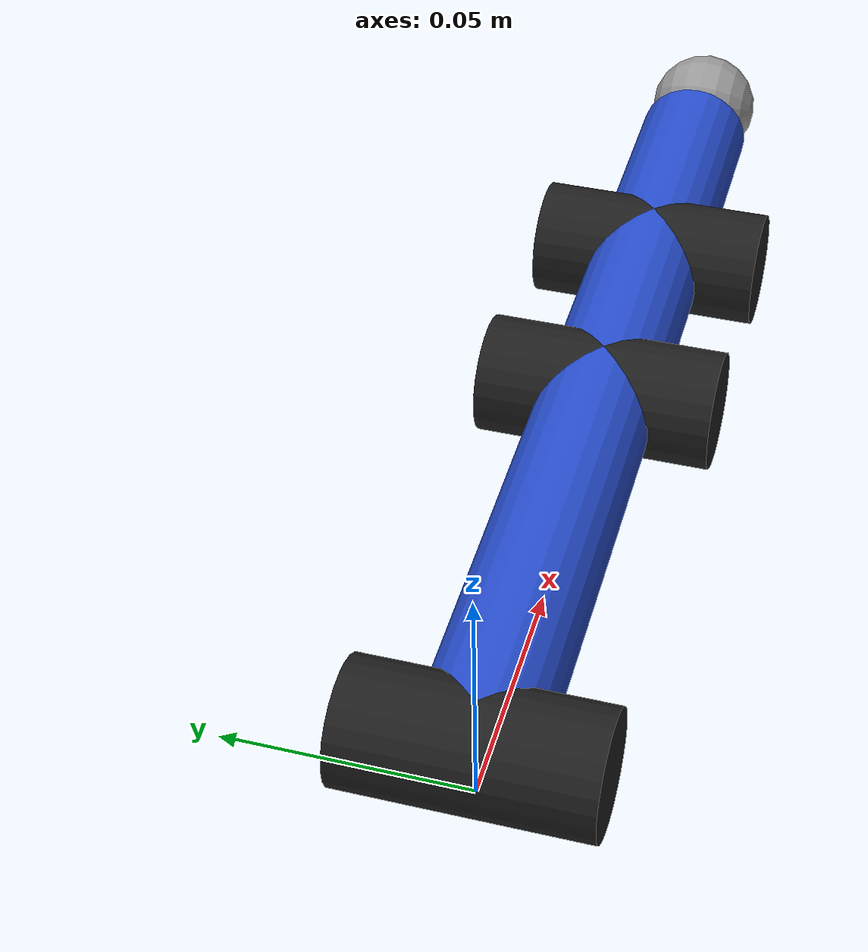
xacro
<?xml version="1.0"?>
<robot name="3R_manipulator" xmlns:xacro="http://www.ros.org/wiki/xacro">

    <xacro:include filename="common_properties.xacro" />

    <!-- Properties -->
    <xacro:property name="link_radius" value="0.0125" />
    <xacro:property name="joint_length" value="0.05" />
    <xacro:property name="link1_length" value="0.10" />
    <xacro:property name="link2_length" value="0.05" />
    <xacro:property name="link3_length" value="0.05" />
    <xacro:property name="payload_radius" value="0.0125" />

    <!-- Base footprint and link -->
    <link name="base_footprint">
        <inertial>
            <mass value="1000"/>
            <inertia ixx="0.001" ixy="0.0" ixz="0.0" iyy="0.001" iyz="0.0" izz="0.001"/>
        </inertial>
        <collision>
            <geometry>
                <box size="0.001 0.001 0.001"/>
            </geometry>
        </collision>
    </link>

    <joint name="base_joint" type="revolute">
        <parent link="base_footprint"/>
        <child link="base_link"/>
        <origin xyz="0 0 ${link_radius}" rpy="${pi/2} 0 0"/>
        <limit effort="100.0" velocity="10.0" lower="0" upper="${pi}" />
        <axis xyz="0 0 1"/>
    </joint>

    <link name="base_link">
            <visual>
                <geometry>
                    <cylinder radius="${link_radius}" length="${joint_length}"/>
                </geometry>
                <material name="black"/>
            </visual>
            <collision>
                <geometry>
                    <cylinder radius="${link_radius}" length="${joint_length}"/>
                </geometry>
            </collision>
            <xacro:cylinder_inertia m="0.1" r="${link_radius}" h="${joint_length}"
                                    xyz="0 0 0" rpy="0 0 0" />
        </link>

    <joint name="base_link2_joint" type="fixed">
        <parent link="base_link"/>
        <child link="link1"/>
        <origin xyz="0 0 0" rpy="0 0 0 "/>
        <axis xyz="0 1 0"/>
    </joint>

    <link name="link1">
            <visual>
                <geometry>
                    <cylinder radius="${link_radius}" length="${link1_length}"/>
                </geometry>
                <material name="blue"/>
                <origin xyz="${link1_length/2} 0 0" rpy="0 ${pi/2} 0"/>
            </visual>
            <collision>
                <geometry>
                    <cylinder radius="${link_radius}" length="${link1_length}"/>
                </geometry>
            </collision>
            <xacro:cylinder_inertia m="0.1" r="${link_radius}" h="${link1_length}"
                                    xyz="0 0 0" rpy="0 0 0" />
    </link>

    <joint name="link1_joint2" type="revolute">
        <parent link="link1"/>
        <child link="joint2_link"/>
        <origin xyz="${link1_length} 0 0" rpy="0 0 0"/>
        <limit effort="100.0" velocity="10.0" lower="${-pi/2}" upper="${pi/2}" />
        <axis xyz="0 0 1"/>
    </joint>

    <link name="joint2_link">
            <visual>
                <geometry>
                    <cylinder radius="${link_radius}" length="${joint_length}"/>
                </geometry>
                <material name="black"/>
            </visual>
            <collision>
                <geometry>
                    <cylinder radius="${link_radius}" length="${joint_length}"/>
                </geometry>
            </collision>
            <xacro:cylinder_inertia m="0.1" r="${link_radius}" h="${joint_length}"
                                    xyz="0 0 0" rpy="0 0 0" />
    </link>

    <joint name="joint2_link2_joint" type="fixed">
        <parent link="joint2_link"/>
        <child link="link2"/>
        <origin xyz="0 0 0" rpy="0 0 0 "/>
        <axis xyz="0 1 0"/>
    </joint>

    <link name="link2">
            <visual>
                <geometry>
                    <cylinder radius="${link_radius}" length="${link2_length}"/>
                </geometry>
                <material name="blue"/>
                <origin xyz="${link2_length/2} 0 0" rpy="0 ${pi/2} 0"/>
            </visual>
            <collision>
                <geometry>
                    <cylinder radius="${link_radius}" length="${link2_length}"/>
                </geometry>
            </collision>
            <xacro:cylinder_inertia m="0.1" r="${link_radius}" h="${link2_length}"
                                    xyz="0 0 0" rpy="0 0 0" />
    </link>

    <joint name="link2_joint3" type="revolute">
        <parent link="link2"/>
        <child link="joint3_link"/>
        <origin xyz="${link2_length} 0 0" rpy="0 0 0"/>
        <limit effort="100.0" velocity="10.0" lower="${-pi/2}" upper="${pi/2}" />
        <axis xyz="0 0 1"/>
    </joint>

    <link name="joint3_link">
            <visual>
                <geometry>
                    <cylinder radius="${link_radius}" length="${joint_length}"/>
                </geometry>
                <material name="black"/>
            </visual>
            <collision>
                <geometry>
                    <cylinder radius="${link_radius}" length="${joint_length}"/>
                </geometry>
            </collision>
            <xacro:cylinder_inertia m="0.1" r="${link_radius}" h="${joint_length}"
                                    xyz="0 0 0" rpy="0 0 0" />
    </link>

    <joint name="joint3_link3_joint" type="fixed">
        <parent link="joint3_link"/>
        <child link="link3"/>
        <origin xyz="0 0 0" rpy="0 0 0 "/>
        <axis xyz="0 1 0"/>
    </joint>

    <link name="link3">
            <visual>
                <geometry>
                    <cylinder radius="${link_radius}" length="${link3_length}"/>
                </geometry>
                <material name="blue"/>
                <origin xyz="${link3_length/2} 0 0" rpy="0 ${pi/2} 0"/>
            </visual>
            <collision>
                <geometry>
                    <cylinder radius="${link_radius}" length="${link3_length}"/>
                </geometry>
            </collision>
            <xacro:cylinder_inertia m="0.1" r="${link_radius}" h="${link3_length}"
                                    xyz="0 0 0" rpy="0 0 0" />
    </link>

    <joint name="link3_payload" type="fixed">
        <parent link="link3"/>
        <child link="payload"/>
        <origin xyz="${link3_length+ payload_radius} 0 0" rpy="0 0 0"/>
        <axis xyz="0 0 1"/>
    </joint>

     <link name="payload">
        <visual>
            <geometry>
                <sphere radius="${payload_radius}"/>
            </geometry>
            <material name="grey"/>
        </visual>
        <collision>
            <geometry>
                <sphere radius="${payload_radius}"/>
            </geometry>
        </collision>
        <xacro:sphere_inertia m="0.5" r="${payload_radius}"
                                    xyz="0 0 0" rpy="0 0 0" />
    </link>

    <gazebo>
        <plugin filename="libgazebo_ros2_control.so" name="gazebo_ros2_control">
            <parameters>$(find arm_robot_description)/config/3r_manipulator_control.yaml</parameters>
        </plugin>
    </gazebo>

</robot>

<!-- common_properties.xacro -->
<robot xmlns:xacro="http://www.ros.org/wiki/xacro">

    <gazebo reference="base_link">
        <material>Gazebo/Black</material>
    </gazebo>

    <gazebo reference="link1">
        <material>Gazebo/Blue</material>
    </gazebo>

    <gazebo reference="joint2_link">
        <material>Gazebo/Black</material>
    </gazebo>

    <gazebo reference="link2">
        <material>Gazebo/Blue</material>
    </gazebo>

    <gazebo reference="joint3_link">
        <material>Gazebo/Black</material>
    </gazebo>

    <gazebo reference="link3">
        <material>Gazebo/Blue</material>
    </gazebo>

    <gazebo reference="payload">
        <material>Gazebo/Grey</material>
    </gazebo>

    <xacro:macro name="box_inertia" params="m l w h xyz rpy">
        <inertial>
            <origin xyz="${xyz}" rpy="${rpy}" />
            <mass value="${m}" />
            <inertia ixx="${(m/12) * (h*h + l*l)}" ixy="0" ixz="0"
                     iyy="${(m/12) * (w*w + l*l)}" iyz="0"
                     izz="${(m/12) * (w*w + h*h)}" />
        </inertial>
    </xacro:macro>

    <xacro:macro name="cylinder_inertia" params="m r h xyz rpy">
        <inertial>
            <origin xyz="${xyz}" rpy="${rpy}" />
            <mass value="${m}" />
            <inertia ixx="${(m/12) * (3*r*r + h*h)}" ixy="0" ixz="0"
                     iyy="${(m/12) * (3*r*r + h*h)}" iyz="0"
                     izz="${(m/2) * (r*r)}" />
        </inertial>
    </xacro:macro>

    <xacro:macro name="sphere_inertia" params="m r xyz rpy">
        <inertial>
            <origin xyz="${xyz}" rpy="${rpy}" />
            <mass value="${m}" />
            <inertia ixx="${(2/5) * m * r * r}" ixy="0" ixz="0"
                     iyy="${(2/5) * m * r * r}" iyz="0"
                     izz="${(2/5) * m * r * r}" />
        </inertial>
    </xacro:macro>

</robot>
